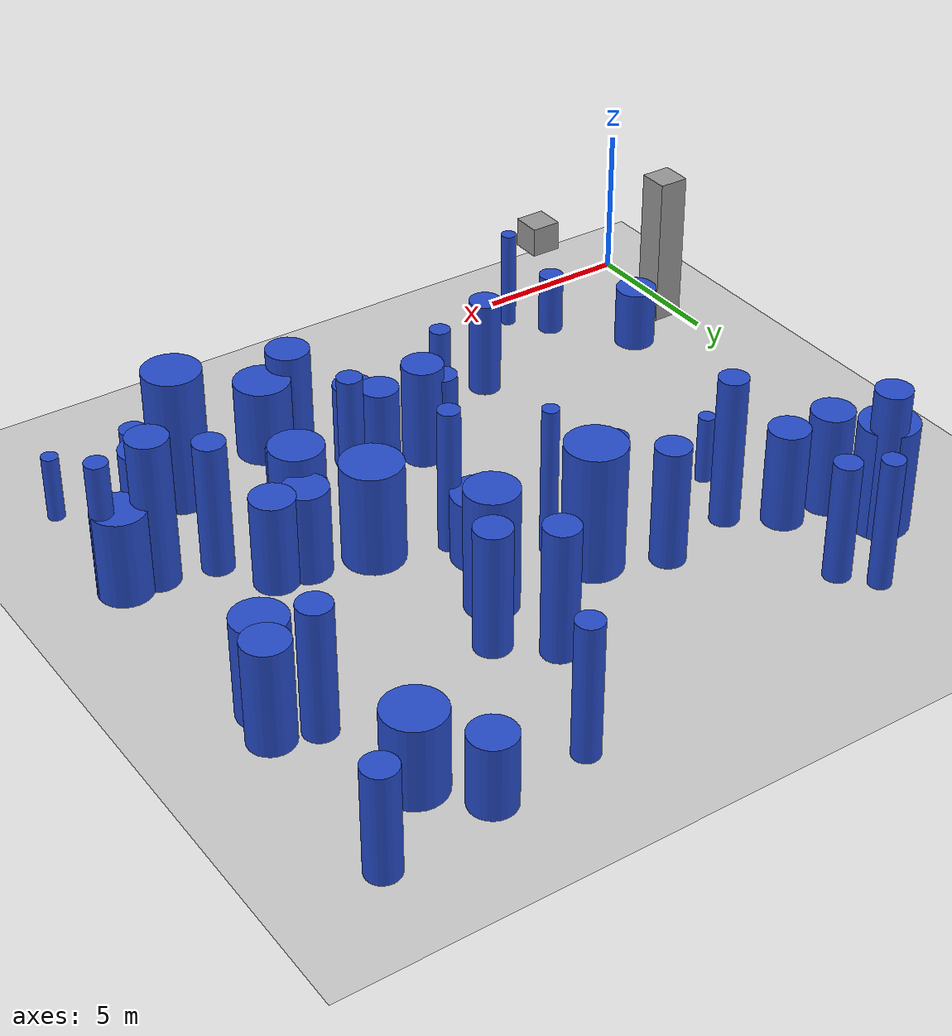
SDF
<sdf version="1.6">
 <world name="default">
  <model name="ground_plane">
   <static>1</static>
   <link name="link">
    <collision name="collision">
     <geometry><plane><normal>0 0 1</normal><size>100 100</size></plane></geometry>
     <surface><friction><ode><mu>100</mu><mu2>50</mu2></ode></friction></surface>
    </collision>
    <visual name="visual">
     <cast_shadows>0</cast_shadows>
     <geometry><plane><normal>0 0 1</normal><size>100 100</size></plane></geometry>
     <material>
      <script><uri>file://media/materials/scripts/gazebo.material</uri><name>Gazebo/Grey</name></script>
     </material>
    </visual>
   </link>
  </model>
  <model name="0">
   <static>0</static>
   <link name="link">
    <inertial>
     <mass>2</mass>
     <inertia><ixx>3.82085</ixx><ixy>0</ixy><ixz>0</ixz><iyy>3.82085</iyy><iyz>0</iyz><izz>0.122841</izz></inertia>
    </inertial>
    <collision name="collision">
     <geometry><cylinder><length>4.74937</length><radius>0.350486</radius></cylinder></geometry>
     <surface><contact><collide_without_contact>1</collide_without_contact></contact></surface>
    </collision>
    <visual name="visual">
     <geometry><cylinder><length>4.74937</length><radius>0.350486</radius></cylinder></geometry>
     <material>
      <script><uri>file://media/materials/scripts/gazebo.material</uri><name>Gazebo/Blue</name></script>
     </material>
    </visual>
    <gravity>0</gravity>
   </link>
   <pose>13.9637 10.7957 2.37469 0 -0 0</pose>
  </model>
  <model name="23">
   <static>0</static>
   <link name="link">
    <inertial>
     <mass>2</mass>
     <inertia><ixx>1.86215</ixx><ixy>0</ixy><ixz>0</ixz><iyy>1.86215</iyy><iyz>0</iyz><izz>0.4961</izz></inertia>
    </inertial>
    <collision name="collision">
     <geometry><cylinder><length>3.11201</length><radius>0.704343</radius></cylinder></geometry>
     <surface><contact><collide_without_contact>1</collide_without_contact></contact></surface>
    </collision>
    <visual name="visual">
     <geometry><cylinder><length>3.11201</length><radius>0.704343</radius></cylinder></geometry>
     <material>
      <script><uri>file://media/materials/scripts/gazebo.material</uri><name>Gazebo/Blue</name></script>
     </material>
    </visual>
    <gravity>0</gravity>
   </link>
   <pose>14.7881 2.99423 1.55601 0 -0 0</pose>
  </model>
  <model name="28">
   <static>0</static>
   <link name="link">
    <inertial>
     <mass>2</mass>
     <inertia><ixx>1.90148</ixx><ixy>0</ixy><ixz>0</ixz><iyy>1.90148</iyy><iyz>0</iyz><izz>0.266141</izz></inertia>
    </inertial>
    <collision name="collision">
     <geometry><cylinder><length>3.25737</length><radius>0.515889</radius></cylinder></geometry>
     <surface><contact><collide_without_contact>1</collide_without_contact></contact></surface>
    </collision>
    <visual name="visual">
     <geometry><cylinder><length>3.25737</length><radius>0.515889</radius></cylinder></geometry>
     <material>
      <script><uri>file://media/materials/scripts/gazebo.material</uri><name>Gazebo/Blue</name></script>
     </material>
    </visual>
    <gravity>0</gravity>
   </link>
   <pose>8.19868 4.18258 1.62868 0 -0 0</pose>
  </model>
  <model name="37">
   <static>0</static>
   <link name="link">
    <inertial>
     <mass>2</mass>
     <inertia><ixx>4.25456</ixx><ixy>0</ixy><ixz>0</ixz><iyy>4.25456</iyy><iyz>0</iyz><izz>0.212678</izz></inertia>
    </inertial>
    <collision name="collision">
     <geometry><cylinder><length>4.98892</length><radius>0.46117</radius></cylinder></geometry>
     <surface><contact><collide_without_contact>1</collide_without_contact></contact></surface>
    </collision>
    <visual name="visual">
     <geometry><cylinder><length>4.98892</length><radius>0.46117</radius></cylinder></geometry>
     <material>
      <script><uri>file://media/materials/scripts/gazebo.material</uri><name>Gazebo/Blue</name></script>
     </material>
    </visual>
    <gravity>0</gravity>
   </link>
   <pose>6.44506 14.3001 2.49446 0 -0 0</pose>
  </model>
  <model name="42">
   <static>0</static>
   <link name="link">
    <inertial>
     <mass>2</mass>
     <inertia><ixx>1.3081</ixx><ixy>0</ixy><ixz>0</ixz><iyy>1.3081</iyy><iyz>0</iyz><izz>0.176853</izz></inertia>
    </inertial>
    <collision name="collision">
     <geometry><cylinder><length>2.70519</length><radius>0.420539</radius></cylinder></geometry>
     <surface><contact><collide_without_contact>1</collide_without_contact></contact></surface>
    </collision>
    <visual name="visual">
     <geometry><cylinder><length>2.70519</length><radius>0.420539</radius></cylinder></geometry>
     <material>
      <script><uri>file://media/materials/scripts/gazebo.material</uri><name>Gazebo/Blue</name></script>
     </material>
    </visual>
    <gravity>0</gravity>
   </link>
   <pose>20.533 3.76774 1.3526 0 -0 0</pose>
  </model>
  <model name="48">
   <static>0</static>
   <link name="link">
    <inertial>
     <mass>2</mass>
     <inertia>
      <ixx>0.818871</ixx>
      <ixy>0</ixy>
      <ixz>0</ixz>
      <iyy>0.818871</iyy>
      <iyz>0</iyz>
      <izz>0.0707383</izz>
     </inertia>
    </inertial>
    <collision name="collision">
     <geometry><cylinder><length>2.16818</length><radius>0.265967</radius></cylinder></geometry>
     <surface><contact><collide_without_contact>1</collide_without_contact></contact></surface>
    </collision>
    <visual name="visual">
     <geometry><cylinder><length>2.16818</length><radius>0.265967</radius></cylinder></geometry>
     <material>
      <script><uri>file://media/materials/scripts/gazebo.material</uri><name>Gazebo/Blue</name></script>
     </material>
    </visual>
    <gravity>0</gravity>
   </link>
   <pose>22.8986 2.94497 1.08409 0 -0 0</pose>
  </model>
  <model name="56">
   <static>0</static>
   <link name="link">
    <inertial>
     <mass>2</mass>
     <inertia><ixx>1.34214</ixx><ixy>0</ixy><ixz>0</ixz><iyy>1.34214</iyy><iyz>0</iyz><izz>0.594662</izz></inertia>
    </inertial>
    <collision name="collision">
     <geometry><cylinder><length>2.50377</length><radius>0.771143</radius></cylinder></geometry>
     <surface><contact><collide_without_contact>1</collide_without_contact></contact></surface>
    </collision>
    <visual name="visual">
     <geometry><cylinder><length>2.50377</length><radius>0.771143</radius></cylinder></geometry>
     <material>
      <script><uri>file://media/materials/scripts/gazebo.material</uri><name>Gazebo/Blue</name></script>
     </material>
    </visual>
    <gravity>0</gravity>
   </link>
   <pose>17.0113 6.99255 1.25189 0 -0 0</pose>
  </model>
  <model name="60">
   <static>0</static>
   <link name="link">
    <inertial>
     <mass>2</mass>
     <inertia><ixx>2.10807</ixx><ixy>0</ixy><ixz>0</ixz><iyy>2.10807</iyy><iyz>0</iyz><izz>0.46283</izz></inertia>
    </inertial>
    <collision name="collision">
     <geometry><cylinder><length>3.35558</length><radius>0.680316</radius></cylinder></geometry>
     <surface><contact><collide_without_contact>1</collide_without_contact></contact></surface>
    </collision>
    <visual name="visual">
     <geometry><cylinder><length>3.35558</length><radius>0.680316</radius></cylinder></geometry>
     <material>
      <script><uri>file://media/materials/scripts/gazebo.material</uri><name>Gazebo/Blue</name></script>
     </material>
    </visual>
    <gravity>0</gravity>
   </link>
   <pose>3.4312 15.3851 1.67779 0 -0 0</pose>
  </model>
  <model name="62">
   <static>0</static>
   <link name="link">
    <inertial>
     <mass>2</mass>
     <inertia><ixx>3.58145</ixx><ixy>0</ixy><ixz>0</ixz><iyy>3.58145</iyy><iyz>0</iyz><izz>0.124934</izz></inertia>
    </inertial>
    <collision name="collision">
     <geometry><cylinder><length>4.59498</length><radius>0.35346</radius></cylinder></geometry>
     <surface><contact><collide_without_contact>1</collide_without_contact></contact></surface>
    </collision>
    <visual name="visual">
     <geometry><cylinder><length>4.59498</length><radius>0.35346</radius></cylinder></geometry>
     <material>
      <script><uri>file://media/materials/scripts/gazebo.material</uri><name>Gazebo/Blue</name></script>
     </material>
    </visual>
    <gravity>0</gravity>
   </link>
   <pose>23.3049 7.35052 2.29749 0 -0 0</pose>
  </model>
  <model name="63">
   <static>0</static>
   <link name="link">
    <inertial>
     <mass>2</mass>
     <inertia><ixx>1.71261</ixx><ixy>0</ixy><ixz>0</ixz><iyy>1.71261</iyy><iyz>0</iyz><izz>0.710603</izz></inertia>
    </inertial>
    <collision name="collision">
     <geometry><cylinder><length>2.85375</length><radius>0.842973</radius></cylinder></geometry>
     <surface><contact><collide_without_contact>1</collide_without_contact></contact></surface>
    </collision>
    <visual name="visual">
     <geometry><cylinder><length>2.85375</length><radius>0.842973</radius></cylinder></geometry>
     <material>
      <script><uri>file://media/materials/scripts/gazebo.material</uri><name>Gazebo/Blue</name></script>
     </material>
    </visual>
    <gravity>0</gravity>
   </link>
   <pose>22.8153 7.3988 1.42687 0 -0 0</pose>
  </model>
  <model name="65">
   <static>0</static>
   <link name="link">
    <inertial>
     <mass>2</mass>
     <inertia><ixx>1.48381</ixx><ixy>0</ixy><ixz>0</ixz><iyy>1.48381</iyy><iyz>0</iyz><izz>0.389355</izz></inertia>
    </inertial>
    <collision name="collision">
     <geometry><cylinder><length>2.78116</length><radius>0.623983</radius></cylinder></geometry>
     <surface><contact><collide_without_contact>1</collide_without_contact></contact></surface>
    </collision>
    <visual name="visual">
     <geometry><cylinder><length>2.78116</length><radius>0.623983</radius></cylinder></geometry>
     <material>
      <script><uri>file://media/materials/scripts/gazebo.material</uri><name>Gazebo/Blue</name></script>
     </material>
    </visual>
    <gravity>0</gravity>
   </link>
   <pose>13.9256 5.41182 1.39058 0 -0 0</pose>
  </model>
  <model name="67">
   <static>0</static>
   <link name="link">
    <inertial>
     <mass>2</mass>
     <inertia><ixx>3.45913</ixx><ixy>0</ixy><ixz>0</ixz><iyy>3.45913</iyy><iyz>0</iyz><izz>0.154991</izz></inertia>
    </inertial>
    <collision name="collision">
     <geometry><cylinder><length>4.50442</length><radius>0.39369</radius></cylinder></geometry>
     <surface><contact><collide_without_contact>1</collide_without_contact></contact></surface>
    </collision>
    <visual name="visual">
     <geometry><cylinder><length>4.50442</length><radius>0.39369</radius></cylinder></geometry>
     <material>
      <script><uri>file://media/materials/scripts/gazebo.material</uri><name>Gazebo/Blue</name></script>
     </material>
    </visual>
    <gravity>0</gravity>
   </link>
   <pose>15.1867 7.39624 2.25221 0 -0 0</pose>
  </model>
  <model name="68">
   <static>0</static>
   <link name="link">
    <inertial>
     <mass>2</mass>
     <inertia><ixx>3.23066</ixx><ixy>0</ixy><ixz>0</ixz><iyy>3.23066</iyy><iyz>0</iyz><izz>0.309378</izz></inertia>
    </inertial>
    <collision name="collision">
     <geometry><cylinder><length>4.29602</length><radius>0.556217</radius></cylinder></geometry>
     <surface><contact><collide_without_contact>1</collide_without_contact></contact></surface>
    </collision>
    <visual name="visual">
     <geometry><cylinder><length>4.29602</length><radius>0.556217</radius></cylinder></geometry>
     <material>
      <script><uri>file://media/materials/scripts/gazebo.material</uri><name>Gazebo/Blue</name></script>
     </material>
    </visual>
    <gravity>0</gravity>
   </link>
   <pose>14.1985 16.6179 2.14801 0 -0 0</pose>
  </model>
  <model name="69">
   <static>0</static>
   <link name="link">
    <inertial>
     <mass>2</mass>
     <inertia><ixx>2.30583</ixx><ixy>0</ixy><ixz>0</ixz><iyy>2.30583</iyy><iyz>0</iyz><izz>0.930994</izz></inertia>
    </inertial>
    <collision name="collision">
     <geometry><cylinder><length>3.32295</length><radius>0.96488</radius></cylinder></geometry>
     <surface><contact><collide_without_contact>1</collide_without_contact></contact></surface>
    </collision>
    <visual name="visual">
     <geometry><cylinder><length>3.32295</length><radius>0.96488</radius></cylinder></geometry>
     <material>
      <script><uri>file://media/materials/scripts/gazebo.material</uri><name>Gazebo/Blue</name></script>
     </material>
    </visual>
    <gravity>0</gravity>
   </link>
   <pose>16.075 9.98892 1.66147 0 -0 0</pose>
  </model>
  <model name="72">
   <static>0</static>
   <link name="link">
    <inertial>
     <mass>2</mass>
     <inertia><ixx>1.15911</ixx><ixy>0</ixy><ixz>0</ixz><iyy>1.15911</iyy><iyz>0</iyz><izz>0.497429</izz></inertia>
    </inertial>
    <collision name="collision">
     <geometry><cylinder><length>2.33717</length><radius>0.705286</radius></cylinder></geometry>
     <surface><contact><collide_without_contact>1</collide_without_contact></contact></surface>
    </collision>
    <visual name="visual">
     <geometry><cylinder><length>2.33717</length><radius>0.705286</radius></cylinder></geometry>
     <material>
      <script><uri>file://media/materials/scripts/gazebo.material</uri><name>Gazebo/Blue</name></script>
     </material>
    </visual>
    <gravity>0</gravity>
   </link>
   <pose>19.1477 20.5677 1.16859 0 -0 0</pose>
  </model>
  <model name="75">
   <static>0</static>
   <link name="link">
    <inertial>
     <mass>2</mass>
     <inertia><ixx>2.1011</ixx><ixy>0</ixy><ixz>0</ixz><iyy>2.1011</iyy><iyz>0</iyz><izz>0.443889</izz></inertia>
    </inertial>
    <collision name="collision">
     <geometry><cylinder><length>3.35781</length><radius>0.66625</radius></cylinder></geometry>
     <surface><contact><collide_without_contact>1</collide_without_contact></contact></surface>
    </collision>
    <visual name="visual">
     <geometry><cylinder><length>3.35781</length><radius>0.66625</radius></cylinder></geometry>
     <material>
      <script><uri>file://media/materials/scripts/gazebo.material</uri><name>Gazebo/Blue</name></script>
     </material>
    </visual>
    <gravity>0</gravity>
   </link>
   <pose>12.0255 6.41465 1.67891 0 -0 0</pose>
  </model>
  <model name="82">
   <static>0</static>
   <link name="link">
    <inertial>
     <mass>2</mass>
     <inertia><ixx>3.43627</ixx><ixy>0</ixy><ixz>0</ixz><iyy>3.43627</iyy><iyz>0</iyz><izz>0.901871</izz></inertia>
    </inertial>
    <collision name="collision">
     <geometry><cylinder><length>4.23226</length><radius>0.949669</radius></cylinder></geometry>
     <surface><contact><collide_without_contact>1</collide_without_contact></contact></surface>
    </collision>
    <visual name="visual">
     <geometry><cylinder><length>4.23226</length><radius>0.949669</radius></cylinder></geometry>
     <material>
      <script><uri>file://media/materials/scripts/gazebo.material</uri><name>Gazebo/Blue</name></script>
     </material>
    </visual>
    <gravity>0</gravity>
   </link>
   <pose>11.0478 13.9036 2.11613 0 -0 0</pose>
  </model>
  <model name="83">
   <static>0</static>
   <link name="link">
    <inertial>
     <mass>2</mass>
     <inertia><ixx>2.13267</ixx><ixy>0</ixy><ixz>0</ixz><iyy>2.13267</iyy><iyz>0</iyz><izz>0.266317</izz></inertia>
    </inertial>
    <collision name="collision">
     <geometry><cylinder><length>3.46367</length><radius>0.516059</radius></cylinder></geometry>
     <surface><contact><collide_without_contact>1</collide_without_contact></contact></surface>
    </collision>
    <visual name="visual">
     <geometry><cylinder><length>3.46367</length><radius>0.516059</radius></cylinder></geometry>
     <material>
      <script><uri>file://media/materials/scripts/gazebo.material</uri><name>Gazebo/Blue</name></script>
     </material>
    </visual>
    <gravity>0</gravity>
   </link>
   <pose>22.7544 21.0733 1.73184 0 -0 0</pose>
  </model>
  <model name="91">
   <static>0</static>
   <link name="link">
    <inertial>
     <mass>2</mass>
     <inertia><ixx>2.86372</ixx><ixy>0</ixy><ixz>0</ixz><iyy>2.86372</iyy><iyz>0</iyz><izz>0.467923</izz></inertia>
    </inertial>
    <collision name="collision">
     <geometry><cylinder><length>3.97222</length><radius>0.684049</radius></cylinder></geometry>
     <surface><contact><collide_without_contact>1</collide_without_contact></contact></surface>
    </collision>
    <visual name="visual">
     <geometry><cylinder><length>3.97222</length><radius>0.684049</radius></cylinder></geometry>
     <material>
      <script><uri>file://media/materials/scripts/gazebo.material</uri><name>Gazebo/Blue</name></script>
     </material>
    </visual>
    <gravity>0</gravity>
   </link>
   <pose>21.5916 6.60157 1.98611 0 -0 0</pose>
  </model>
  <model name="95">
   <static>0</static>
   <link name="link">
    <inertial>
     <mass>2</mass>
     <inertia><ixx>1.48896</ixx><ixy>0</ixy><ixz>0</ixz><iyy>1.48896</iyy><iyz>0</iyz><izz>0.809699</izz></inertia>
    </inertial>
    <collision name="collision">
     <geometry><cylinder><length>2.55043</length><radius>0.899833</radius></cylinder></geometry>
     <surface><contact><collide_without_contact>1</collide_without_contact></contact></surface>
    </collision>
    <visual name="visual">
     <geometry><cylinder><length>2.55043</length><radius>0.899833</radius></cylinder></geometry>
     <material>
      <script><uri>file://media/materials/scripts/gazebo.material</uri><name>Gazebo/Blue</name></script>
     </material>
    </visual>
    <gravity>0</gravity>
   </link>
   <pose>15.9343 3.34985 1.27521 0 -0 0</pose>
  </model>
  <model name="99">
   <static>0</static>
   <link name="link">
    <inertial>
     <mass>2</mass>
     <inertia><ixx>2.61287</ixx><ixy>0</ixy><ixz>0</ixz><iyy>2.61287</iyy><iyz>0</iyz><izz>0.855804</izz></inertia>
    </inertial>
    <collision name="collision">
     <geometry><cylinder><length>3.62074</length><radius>0.925097</radius></cylinder></geometry>
     <surface><contact><collide_without_contact>1</collide_without_contact></contact></surface>
    </collision>
    <visual name="visual">
     <geometry><cylinder><length>3.62074</length><radius>0.925097</radius></cylinder></geometry>
     <material>
      <script><uri>file://media/materials/scripts/gazebo.material</uri><name>Gazebo/Blue</name></script>
     </material>
    </visual>
    <gravity>0</gravity>
   </link>
   <pose>2.77032 17.0511 1.81037 0 -0 0</pose>
  </model>
  <model name="100">
   <static>0</static>
   <link name="link">
    <inertial>
     <mass>2</mass>
     <inertia><ixx>3.89591</ixx><ixy>0</ixy><ixz>0</ixz><iyy>3.89591</iyy><iyz>0</iyz><izz>0.839775</izz></inertia>
    </inertial>
    <collision name="collision">
     <geometry><cylinder><length>4.56685</length><radius>0.916392</radius></cylinder></geometry>
     <surface><contact><collide_without_contact>1</collide_without_contact></contact></surface>
    </collision>
    <visual name="visual">
     <geometry><cylinder><length>4.56685</length><radius>0.916392</radius></cylinder></geometry>
     <material>
      <script><uri>file://media/materials/scripts/gazebo.material</uri><name>Gazebo/Blue</name></script>
     </material>
    </visual>
    <gravity>0</gravity>
   </link>
   <pose>19.3333 4.19941 2.28343 0 -0 0</pose>
  </model>
  <model name="103">
   <static>0</static>
   <link name="link">
    <inertial>
     <mass>2</mass>
     <inertia><ixx>3.29088</ixx><ixy>0</ixy><ixz>0</ixz><iyy>3.29088</iyy><iyz>0</iyz><izz>0.244408</izz></inertia>
    </inertial>
    <collision name="collision">
     <geometry><cylinder><length>4.36028</length><radius>0.494377</radius></cylinder></geometry>
     <surface><contact><collide_without_contact>1</collide_without_contact></contact></surface>
    </collision>
    <visual name="visual">
     <geometry><cylinder><length>4.36028</length><radius>0.494377</radius></cylinder></geometry>
     <material>
      <script><uri>file://media/materials/scripts/gazebo.material</uri><name>Gazebo/Blue</name></script>
     </material>
    </visual>
    <gravity>0</gravity>
   </link>
   <pose>20.099 7.88013 2.18014 0 -0 0</pose>
  </model>
  <model name="104">
   <static>0</static>
   <link name="link">
    <inertial>
     <mass>2</mass>
     <inertia>
      <ixx>0.890538</ixx>
      <ixy>0</ixy>
      <ixz>0</ixz>
      <iyy>0.890538</iyy>
      <iyz>0</iyz>
      <izz>0.072293</izz>
     </inertia>
    </inertial>
    <collision name="collision">
     <geometry><cylinder><length>2.26414</length><radius>0.268874</radius></cylinder></geometry>
     <surface><contact><collide_without_contact>1</collide_without_contact></contact></surface>
    </collision>
    <visual name="visual">
     <geometry><cylinder><length>2.26414</length><radius>0.268874</radius></cylinder></geometry>
     <material>
      <script><uri>file://media/materials/scripts/gazebo.material</uri><name>Gazebo/Blue</name></script>
     </material>
    </visual>
    <gravity>0</gravity>
   </link>
   <pose>5.60318 12.2797 1.13207 0 -0 0</pose>
  </model>
  <model name="105">
   <static>0</static>
   <link name="link">
    <inertial>
     <mass>2</mass>
     <inertia><ixx>4.0356</ixx><ixy>0</ixy><ixz>0</ixz><iyy>4.0356</iyy><iyz>0</iyz><izz>0.07058</izz></inertia>
    </inertial>
    <collision name="collision">
     <geometry><cylinder><length>4.89917</length><radius>0.265669</radius></cylinder></geometry>
     <surface><contact><collide_without_contact>1</collide_without_contact></contact></surface>
    </collision>
    <visual name="visual">
     <geometry><cylinder><length>4.89917</length><radius>0.265669</radius></cylinder></geometry>
     <material>
      <script><uri>file://media/materials/scripts/gazebo.material</uri><name>Gazebo/Blue</name></script>
     </material>
    </visual>
    <gravity>0</gravity>
   </link>
   <pose>11.6727 12.5603 2.44958 0 -0 0</pose>
  </model>
  <model name="108">
   <static>0</static>
   <link name="link">
    <inertial>
     <mass>2</mass>
     <inertia><ixx>1.72026</ixx><ixy>0</ixy><ixz>0</ixz><iyy>1.72026</iyy><iyz>0</iyz><izz>0.476667</izz></inertia>
    </inertial>
    <collision name="collision">
     <geometry><cylinder><length>2.98187</length><radius>0.690411</radius></cylinder></geometry>
     <surface><contact><collide_without_contact>1</collide_without_contact></contact></surface>
    </collision>
    <visual name="visual">
     <geometry><cylinder><length>2.98187</length><radius>0.690411</radius></cylinder></geometry>
     <material>
      <script><uri>file://media/materials/scripts/gazebo.material</uri><name>Gazebo/Blue</name></script>
     </material>
    </visual>
    <gravity>0</gravity>
   </link>
   <pose>19.0479 9.46239 1.49094 0 -0 0</pose>
  </model>
  <model name="116">
   <static>0</static>
   <link name="link">
    <inertial>
     <mass>2</mass>
     <inertia><ixx>1.28323</ixx><ixy>0</ixy><ixz>0</ixz><iyy>1.28323</iyy><iyz>0</iyz><izz>0.885443</izz></inertia>
    </inertial>
    <collision name="collision">
     <geometry><cylinder><length>2.24567</length><radius>0.94098</radius></cylinder></geometry>
     <surface><contact><collide_without_contact>1</collide_without_contact></contact></surface>
    </collision>
    <visual name="visual">
     <geometry><cylinder><length>2.24567</length><radius>0.94098</radius></cylinder></geometry>
     <material>
      <script><uri>file://media/materials/scripts/gazebo.material</uri><name>Gazebo/Blue</name></script>
     </material>
    </visual>
    <gravity>0</gravity>
   </link>
   <pose>13.4699 11.7379 1.12284 0 -0 0</pose>
  </model>
  <model name="117">
   <static>0</static>
   <link name="link">
    <inertial>
     <mass>2</mass>
     <inertia><ixx>0.80327</ixx><ixy>0</ixy><ixz>0</ixz><iyy>0.80327</iyy><iyz>0</iyz><izz>0.164603</izz></inertia>
    </inertial>
    <collision name="collision">
     <geometry><cylinder><length>2.07986</length><radius>0.405713</radius></cylinder></geometry>
     <surface><contact><collide_without_contact>1</collide_without_contact></contact></surface>
    </collision>
    <visual name="visual">
     <geometry><cylinder><length>2.07986</length><radius>0.405713</radius></cylinder></geometry>
     <material>
      <script><uri>file://media/materials/scripts/gazebo.material</uri><name>Gazebo/Blue</name></script>
     </material>
    </visual>
    <gravity>0</gravity>
   </link>
   <pose>4.24714 2.34076 1.03993 0 -0 0</pose>
  </model>
  <model name="124">
   <static>0</static>
   <link name="link">
    <inertial>
     <mass>2</mass>
     <inertia><ixx>1.70853</ixx><ixy>0</ixy><ixz>0</ixz><iyy>1.70853</iyy><iyz>0</iyz><izz>0.488627</izz></inertia>
    </inertial>
    <collision name="collision">
     <geometry><cylinder><length>2.964</length><radius>0.699019</radius></cylinder></geometry>
     <surface><contact><collide_without_contact>1</collide_without_contact></contact></surface>
    </collision>
    <visual name="visual">
     <geometry><cylinder><length>2.964</length><radius>0.699019</radius></cylinder></geometry>
     <material>
      <script><uri>file://media/materials/scripts/gazebo.material</uri><name>Gazebo/Blue</name></script>
     </material>
    </visual>
    <gravity>0</gravity>
   </link>
   <pose>18.0058 9.5359 1.482 0 -0 0</pose>
  </model>
  <model name="125">
   <static>0</static>
   <link name="link">
    <inertial>
     <mass>2</mass>
     <inertia><ixx>3.34124</ixx><ixy>0</ixy><ixz>0</ixz><iyy>3.34124</iyy><iyz>0</iyz><izz>0.173508</izz></inertia>
    </inertial>
    <collision name="collision">
     <geometry><cylinder><length>4.41893</length><radius>0.416543</radius></cylinder></geometry>
     <surface><contact><collide_without_contact>1</collide_without_contact></contact></surface>
    </collision>
    <visual name="visual">
     <geometry><cylinder><length>4.41893</length><radius>0.416543</radius></cylinder></geometry>
     <material>
      <script><uri>file://media/materials/scripts/gazebo.material</uri><name>Gazebo/Blue</name></script>
     </material>
    </visual>
    <gravity>0</gravity>
   </link>
   <pose>16.0917 20.4093 2.20946 0 -0 0</pose>
  </model>
  <model name="130">
   <static>0</static>
   <link name="link">
    <inertial>
     <mass>2</mass>
     <inertia><ixx>2.41663</ixx><ixy>0</ixy><ixz>0</ixz><iyy>2.41663</iyy><iyz>0</iyz><izz>0.709872</izz></inertia>
    </inertial>
    <collision name="collision">
     <geometry><cylinder><length>3.51713</length><radius>0.842539</radius></cylinder></geometry>
     <surface><contact><collide_without_contact>1</collide_without_contact></contact></surface>
    </collision>
    <visual name="visual">
     <geometry><cylinder><length>3.51713</length><radius>0.842539</radius></cylinder></geometry>
     <material>
      <script><uri>file://media/materials/scripts/gazebo.material</uri><name>Gazebo/Blue</name></script>
     </material>
    </visual>
    <gravity>0</gravity>
   </link>
   <pose>17.5617 8.2997 1.75856 0 -0 0</pose>
  </model>
  <model name="137">
   <static>0</static>
   <link name="link">
    <inertial>
     <mass>2</mass>
     <inertia><ixx>2.74249</ixx><ixy>0</ixy><ixz>0</ixz><iyy>2.74249</iyy><iyz>0</iyz><izz>0.301239</izz></inertia>
    </inertial>
    <collision name="collision">
     <geometry><cylinder><length>3.94351</length><radius>0.548853</radius></cylinder></geometry>
     <surface><contact><collide_without_contact>1</collide_without_contact></contact></surface>
    </collision>
    <visual name="visual">
     <geometry><cylinder><length>3.94351</length><radius>0.548853</radius></cylinder></geometry>
     <material>
      <script><uri>file://media/materials/scripts/gazebo.material</uri><name>Gazebo/Blue</name></script>
     </material>
    </visual>
    <gravity>0</gravity>
   </link>
   <pose>9.06308 14.9023 1.97175 0 -0 0</pose>
  </model>
  <model name="145">
   <static>0</static>
   <link name="link">
    <inertial>
     <mass>2</mass>
     <inertia><ixx>1.58926</ixx><ixy>0</ixy><ixz>0</ixz><iyy>1.58926</iyy><iyz>0</iyz><izz>0.858782</izz></inertia>
    </inertial>
    <collision name="collision">
     <geometry><cylinder><length>2.63803</length><radius>0.926705</radius></cylinder></geometry>
     <surface><contact><collide_without_contact>1</collide_without_contact></contact></surface>
    </collision>
    <visual name="visual">
     <geometry><cylinder><length>2.63803</length><radius>0.926705</radius></cylinder></geometry>
     <material>
      <script><uri>file://media/materials/scripts/gazebo.material</uri><name>Gazebo/Blue</name></script>
     </material>
    </visual>
    <gravity>0</gravity>
   </link>
   <pose>20.4552 18.9918 1.31901 0 -0 0</pose>
  </model>
  <model name="154">
   <static>0</static>
   <link name="link">
    <inertial>
     <mass>2</mass>
     <inertia>
      <ixx>1.92605</ixx>
      <ixy>0</ixy>
      <ixz>0</ixz>
      <iyy>1.92605</iyy>
      <iyz>0</iyz>
      <izz>0.0642289</izz>
     </inertia>
    </inertial>
    <collision name="collision">
     <geometry><cylinder><length>3.37099</length><radius>0.253434</radius></cylinder></geometry>
     <surface><contact><collide_without_contact>1</collide_without_contact></contact></surface>
    </collision>
    <visual name="visual">
     <geometry><cylinder><length>3.37099</length><radius>0.253434</radius></cylinder></geometry>
     <material>
      <script><uri>file://media/materials/scripts/gazebo.material</uri><name>Gazebo/Blue</name></script>
     </material>
    </visual>
    <gravity>0</gravity>
   </link>
   <pose>5.18921 1.18787 1.6855 0 -0 0</pose>
  </model>
  <model name="159">
   <static>0</static>
   <link name="link">
    <inertial>
     <mass>2</mass>
     <inertia><ixx>2.9021</ixx><ixy>0</ixy><ixz>0</ixz><iyy>2.9021</iyy><iyz>0</iyz><izz>0.328169</izz></inertia>
    </inertial>
    <collision name="collision">
     <geometry><cylinder><length>4.05316</length><radius>0.57286</radius></cylinder></geometry>
     <surface><contact><collide_without_contact>1</collide_without_contact></contact></surface>
    </collision>
    <visual name="visual">
     <geometry><cylinder><length>4.05316</length><radius>0.57286</radius></cylinder></geometry>
     <material>
      <script><uri>file://media/materials/scripts/gazebo.material</uri><name>Gazebo/Blue</name></script>
     </material>
    </visual>
    <gravity>0</gravity>
   </link>
   <pose>15.5833 15.3772 2.02658 0 -0 0</pose>
  </model>
  <model name="160">
   <static>0</static>
   <link name="link">
    <inertial>
     <mass>2</mass>
     <inertia><ixx>4.26634</ixx><ixy>0</ixy><ixz>0</ixz><iyy>4.26634</iyy><iyz>0</iyz><izz>0.406906</izz></inertia>
    </inertial>
    <collision name="collision">
     <geometry><cylinder><length>4.93734</length><radius>0.637892</radius></cylinder></geometry>
     <surface><contact><collide_without_contact>1</collide_without_contact></contact></surface>
    </collision>
    <visual name="visual">
     <geometry><cylinder><length>4.93734</length><radius>0.637892</radius></cylinder></geometry>
     <material>
      <script><uri>file://media/materials/scripts/gazebo.material</uri><name>Gazebo/Blue</name></script>
     </material>
    </visual>
    <gravity>0</gravity>
   </link>
   <pose>21.7808 7.46793 2.46867 0 -0 0</pose>
  </model>
  <model name="163">
   <static>0</static>
   <link name="link">
    <inertial>
     <mass>2</mass>
     <inertia><ixx>2.54391</ixx><ixy>0</ixy><ixz>0</ixz><iyy>2.54391</iyy><iyz>0</iyz><izz>0.356458</izz></inertia>
    </inertial>
    <collision name="collision">
     <geometry><cylinder><length>3.7675</length><radius>0.597041</radius></cylinder></geometry>
     <surface><contact><collide_without_contact>1</collide_without_contact></contact></surface>
    </collision>
    <visual name="visual">
     <geometry><cylinder><length>3.7675</length><radius>0.597041</radius></cylinder></geometry>
     <material>
      <script><uri>file://media/materials/scripts/gazebo.material</uri><name>Gazebo/Blue</name></script>
     </material>
    </visual>
    <gravity>0</gravity>
   </link>
   <pose>14.1482 7.34496 1.88375 0 -0 0</pose>
  </model>
  <model name="168">
   <static>0</static>
   <link name="link">
    <inertial>
     <mass>2</mass>
     <inertia>
      <ixx>0.823893</ixx>
      <ixy>0</ixy>
      <ixz>0</ixz>
      <iyy>0.823893</iyy>
      <iyz>0</iyz>
      <izz>0.11943</izz>
     </inertia>
    </inertial>
    <collision name="collision">
     <geometry><cylinder><length>2.14128</length><radius>0.345586</radius></cylinder></geometry>
     <surface><contact><collide_without_contact>1</collide_without_contact></contact></surface>
    </collision>
    <visual name="visual">
     <geometry><cylinder><length>2.14128</length><radius>0.345586</radius></cylinder></geometry>
     <material>
      <script><uri>file://media/materials/scripts/gazebo.material</uri><name>Gazebo/Blue</name></script>
     </material>
    </visual>
    <gravity>0</gravity>
   </link>
   <pose>9.36227 3.30652 1.07064 0 -0 0</pose>
  </model>
  <model name="186">
   <static>0</static>
   <link name="link">
    <inertial>
     <mass>2</mass>
     <inertia><ixx>1.49718</ixx><ixy>0</ixy><ixz>0</ixz><iyy>1.49718</iyy><iyz>0</iyz><izz>0.218656</izz></inertia>
    </inertial>
    <collision name="collision">
     <geometry><cylinder><length>2.88568</length><radius>0.467607</radius></cylinder></geometry>
     <surface><contact><collide_without_contact>1</collide_without_contact></contact></surface>
    </collision>
    <visual name="visual">
     <geometry><cylinder><length>2.88568</length><radius>0.467607</radius></cylinder></geometry>
     <material>
      <script><uri>file://media/materials/scripts/gazebo.material</uri><name>Gazebo/Blue</name></script>
     </material>
    </visual>
    <gravity>0</gravity>
   </link>
   <pose>11.4374 6.61972 1.44284 0 -0 0</pose>
  </model>
  <model name="193">
   <static>0</static>
   <link name="link">
    <inertial>
     <mass>2</mass>
     <inertia><ixx>3.13722</ixx><ixy>0</ixy><ixz>0</ixz><iyy>3.13722</iyy><iyz>0</iyz><izz>0.127114</izz></inertia>
    </inertial>
    <collision name="collision">
     <geometry><cylinder><length>4.29441</length><radius>0.356531</radius></cylinder></geometry>
     <surface><contact><collide_without_contact>1</collide_without_contact></contact></surface>
    </collision>
    <visual name="visual">
     <geometry><cylinder><length>4.29441</length><radius>0.356531</radius></cylinder></geometry>
     <material>
      <script><uri>file://media/materials/scripts/gazebo.material</uri><name>Gazebo/Blue</name></script>
     </material>
    </visual>
    <gravity>0</gravity>
   </link>
   <pose>4.76137 19.2689 2.14721 0 -0 0</pose>
  </model>
  <model name="201">
   <static>0</static>
   <link name="link">
    <inertial>
     <mass>2</mass>
     <inertia><ixx>2.66965</ixx><ixy>0</ixy><ixz>0</ixz><iyy>2.66965</iyy><iyz>0</iyz><izz>0.181986</izz></inertia>
    </inertial>
    <collision name="collision">
     <geometry><cylinder><length>3.93344</length><radius>0.426598</radius></cylinder></geometry>
     <surface><contact><collide_without_contact>1</collide_without_contact></contact></surface>
    </collision>
    <visual name="visual">
     <geometry><cylinder><length>3.93344</length><radius>0.426598</radius></cylinder></geometry>
     <material>
      <script><uri>file://media/materials/scripts/gazebo.material</uri><name>Gazebo/Blue</name></script>
     </material>
    </visual>
    <gravity>0</gravity>
   </link>
   <pose>5.52647 18.2919 1.96672 0 -0 0</pose>
  </model>
  <model name="204">
   <static>0</static>
   <link name="link">
    <inertial>
     <mass>2</mass>
     <inertia><ixx>2.60219</ixx><ixy>0</ixy><ixz>0</ixz><iyy>2.60219</iyy><iyz>0</iyz><izz>0.216827</izz></inertia>
    </inertial>
    <collision name="collision">
     <geometry><cylinder><length>3.86816</length><radius>0.465647</radius></cylinder></geometry>
     <surface><contact><collide_without_contact>1</collide_without_contact></contact></surface>
    </collision>
    <visual name="visual">
     <geometry><cylinder><length>3.86816</length><radius>0.465647</radius></cylinder></geometry>
     <material>
      <script><uri>file://media/materials/scripts/gazebo.material</uri><name>Gazebo/Blue</name></script>
     </material>
    </visual>
    <gravity>0</gravity>
   </link>
   <pose>10.1307 13.4974 1.93408 0 -0 0</pose>
  </model>
  <model name="210">
   <static>0</static>
   <link name="link">
    <inertial>
     <mass>2</mass>
     <inertia><ixx>3.04474</ixx><ixy>0</ixy><ixz>0</ixz><iyy>3.04474</iyy><iyz>0</iyz><izz>0.671848</izz></inertia>
    </inertial>
    <collision name="collision">
     <geometry><cylinder><length>4.03149</length><radius>0.819663</radius></cylinder></geometry>
     <surface><contact><collide_without_contact>1</collide_without_contact></contact></surface>
    </collision>
    <visual name="visual">
     <geometry><cylinder><length>4.03149</length><radius>0.819663</radius></cylinder></geometry>
     <material>
      <script><uri>file://media/materials/scripts/gazebo.material</uri><name>Gazebo/Blue</name></script>
     </material>
    </visual>
    <gravity>0</gravity>
   </link>
   <pose>14.5509 13.827 2.01574 0 -0 0</pose>
  </model>
  <model name="220">
   <static>0</static>
   <link name="link">
    <inertial>
     <mass>2</mass>
     <inertia><ixx>3.14732</ixx><ixy>0</ixy><ixz>0</ixz><iyy>3.14732</iyy><iyz>0</iyz><izz>0.266988</izz></inertia>
    </inertial>
    <collision name="collision">
     <geometry><cylinder><length>4.25241</length><radius>0.516709</radius></cylinder></geometry>
     <surface><contact><collide_without_contact>1</collide_without_contact></contact></surface>
    </collision>
    <visual name="visual">
     <geometry><cylinder><length>4.25241</length><radius>0.516709</radius></cylinder></geometry>
     <material>
      <script><uri>file://media/materials/scripts/gazebo.material</uri><name>Gazebo/Blue</name></script>
     </material>
    </visual>
    <gravity>0</gravity>
   </link>
   <pose>21.3533 15.7514 2.1262 0 -0 0</pose>
  </model>
  <model name="222">
   <static>0</static>
   <link name="link">
    <inertial>
     <mass>2</mass>
     <inertia><ixx>1.978</ixx><ixy>0</ixy><ixz>0</ixz><iyy>1.978</iyy><iyz>0</iyz><izz>0.418624</izz></inertia>
    </inertial>
    <collision name="collision">
     <geometry><cylinder><length>3.25763</length><radius>0.647012</radius></cylinder></geometry>
     <surface><contact><collide_without_contact>1</collide_without_contact></contact></surface>
    </collision>
    <visual name="visual">
     <geometry><cylinder><length>3.25763</length><radius>0.647012</radius></cylinder></geometry>
     <material>
      <script><uri>file://media/materials/scripts/gazebo.material</uri><name>Gazebo/Blue</name></script>
     </material>
    </visual>
    <gravity>0</gravity>
   </link>
   <pose>5.01282 15.2778 1.62881 0 -0 0</pose>
  </model>
  <model name="224">
   <static>0</static>
   <link name="link">
    <inertial>
     <mass>2</mass>
     <inertia><ixx>2.13754</ixx><ixy>0</ixy><ixz>0</ixz><iyy>2.13754</iyy><iyz>0</iyz><izz>0.501197</izz></inertia>
    </inertial>
    <collision name="collision">
     <geometry><cylinder><length>3.36477</length><radius>0.707953</radius></cylinder></geometry>
     <surface><contact><collide_without_contact>1</collide_without_contact></contact></surface>
    </collision>
    <visual name="visual">
     <geometry><cylinder><length>3.36477</length><radius>0.707953</radius></cylinder></geometry>
     <material>
      <script><uri>file://media/materials/scripts/gazebo.material</uri><name>Gazebo/Blue</name></script>
     </material>
    </visual>
    <gravity>0</gravity>
   </link>
   <pose>22.593 15.3313 1.68238 0 -0 0</pose>
  </model>
  <model name="239">
   <static>0</static>
   <link name="link">
    <inertial>
     <mass>2</mass>
     <inertia>
      <ixx>0.915663</ixx>
      <ixy>0</ixy>
      <ixz>0</ixz>
      <iyy>0.915663</iyy>
      <iyz>0</iyz>
      <izz>0.444297</izz>
     </inertia>
    </inertial>
    <collision name="collision">
     <geometry><cylinder><length>2.03987</length><radius>0.666556</radius></cylinder></geometry>
     <surface><contact><collide_without_contact>1</collide_without_contact></contact></surface>
    </collision>
    <visual name="visual">
     <geometry><cylinder><length>2.03987</length><radius>0.666556</radius></cylinder></geometry>
     <material>
      <script><uri>file://media/materials/scripts/gazebo.material</uri><name>Gazebo/Blue</name></script>
     </material>
    </visual>
    <gravity>0</gravity>
   </link>
   <pose>2.37631 4.58174 1.01994 0 -0 0</pose>
  </model>
  <model name="240">
   <static>0</static>
   <link name="link">
    <inertial>
     <mass>2</mass>
     <inertia><ixx>2.06992</ixx><ixy>0</ixy><ixz>0</ixz><iyy>2.06992</iyy><iyz>0</iyz><izz>0.686423</izz></inertia>
    </inertial>
    <collision name="collision">
     <geometry><cylinder><length>3.21873</length><radius>0.828507</radius></cylinder></geometry>
     <surface><contact><collide_without_contact>1</collide_without_contact></contact></surface>
    </collision>
    <visual name="visual">
     <geometry><cylinder><length>3.21873</length><radius>0.828507</radius></cylinder></geometry>
     <material>
      <script><uri>file://media/materials/scripts/gazebo.material</uri><name>Gazebo/Blue</name></script>
     </material>
    </visual>
    <gravity>0</gravity>
   </link>
   <pose>22.1756 14.2551 1.60937 0 -0 0</pose>
  </model>
  <model name="244">
   <static>0</static>
   <link name="link">
    <inertial>
     <mass>2</mass>
     <inertia><ixx>4.27315</ixx><ixy>0</ixy><ixz>0</ixz><iyy>4.27315</iyy><iyz>0</iyz><izz>0.321418</izz></inertia>
    </inertial>
    <collision name="collision">
     <geometry><cylinder><length>4.96736</length><radius>0.566938</radius></cylinder></geometry>
     <surface><contact><collide_without_contact>1</collide_without_contact></contact></surface>
    </collision>
    <visual name="visual">
     <geometry><cylinder><length>4.96736</length><radius>0.566938</radius></cylinder></geometry>
     <material>
      <script><uri>file://media/materials/scripts/gazebo.material</uri><name>Gazebo/Blue</name></script>
     </material>
    </visual>
    <gravity>0</gravity>
   </link>
   <pose>3.04799 17.3425 2.48368 0 -0 0</pose>
  </model>
  <model name="unit_box_0">
   <pose>3.50025 0.500468 2.56963 0 0 -0.001915</pose>
   <link name="link">
    <inertial>
     <mass>1</mass>
     <inertia>
      <ixx>0.166667</ixx>
      <ixy>0</ixy>
      <ixz>0</ixz>
      <iyy>0.166667</iyy>
      <iyz>0</iyz>
      <izz>0.166667</izz>
     </inertia>
    </inertial>
    <collision name="collision"><geometry><box><size>1 1 0.999997</size></box></geometry></collision>
    <visual name="visual">
     <geometry><box><size>1 1 0.999997</size></box></geometry>
     <material>
      <script><name>Gazebo/Grey</name><uri>file://media/materials/scripts/gazebo.material</uri></script>
     </material>
    </visual>
   </link>
  </model>
  <model name="unit_box_0_clone">
   <pose>0.501278 3.50739 2.56963 0 0 -0.000617</pose>
   <link name="link">
    <inertial>
     <mass>1</mass>
     <inertia>
      <ixx>0.166667</ixx>
      <ixy>0</ixy>
      <ixz>0</ixz>
      <iyy>0.166667</iyy>
      <iyz>0</iyz>
      <izz>0.166667</izz>
     </inertia>
    </inertial>
    <collision name="collision"><geometry><box><size>1 1 5.13926</size></box></geometry></collision>
    <visual name="visual">
     <geometry><box><size>1 1 5.13926</size></box></geometry>
     <material>
      <script><name>Gazebo/Grey</name><uri>file://media/materials/scripts/gazebo.material</uri></script>
     </material>
    </visual>
   </link>
  </model>
 </world>
</sdf>
